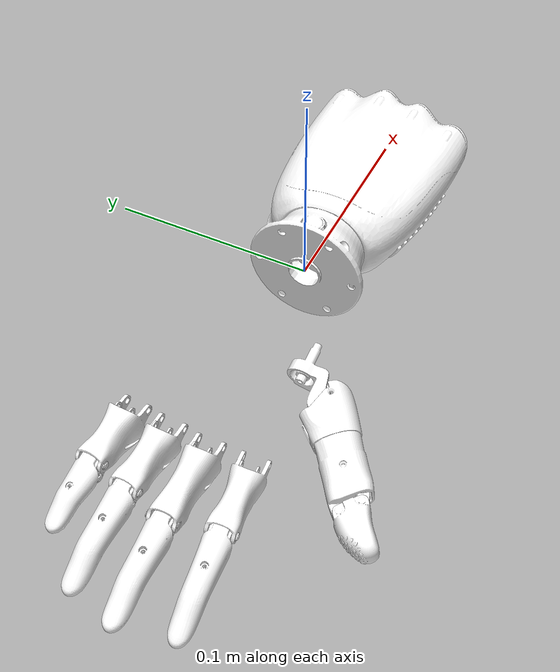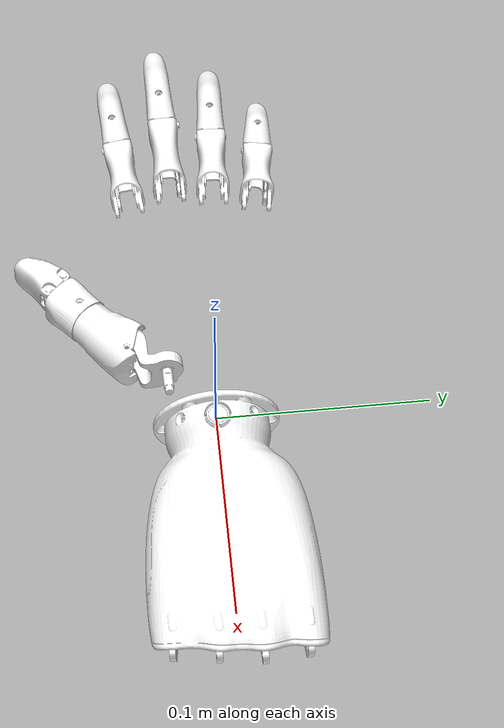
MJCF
<mujoco model="rohand_right">
  <compiler angle="radian"/>

  <asset>
    <mesh name="base_link" content_type="model/stl" file="../assets/meshes_r/base_link.STL"/>
    <mesh name="if_proximal_link" content_type="model/stl" file="../assets/meshes_r/if_proximal_link.STL"/>
    <mesh name="if_distal_link" content_type="model/stl" file="../assets/meshes_r/if_distal_link.STL"/>
    <mesh name="if_connecting_link" content_type="model/stl" file="../assets/meshes_r/if_connecting_link.STL"/>
    <mesh name="mf_proximal_link" content_type="model/stl" file="../assets/meshes_r/mf_proximal_link.STL"/>
    <mesh name="mf_distal_link" content_type="model/stl" file="../assets/meshes_r/mf_distal_link.STL"/>
    <mesh name="mf_connecting_link" content_type="model/stl" file="../assets/meshes_r/mf_connecting_link.STL"/>
    <mesh name="rf_proximal_link" content_type="model/stl" file="../assets/meshes_r/rf_proximal_link.STL"/>
    <mesh name="rf_distal_link" content_type="model/stl" file="../assets/meshes_r/rf_distal_link.STL"/>
    <mesh name="rf_connecting_link" content_type="model/stl" file="../assets/meshes_r/rf_connecting_link.STL"/>
    <mesh name="lf_proximal_link" content_type="model/stl" file="../assets/meshes_r/lf_proximal_link.STL"/>
    <mesh name="lf_distal_link" content_type="model/stl" file="../assets/meshes_r/lf_distal_link.STL"/>
    <mesh name="lf_connecting_link" content_type="model/stl" file="../assets/meshes_r/lf_connecting_link.STL"/>
    <mesh name="th_root_link" content_type="model/stl" file="../assets/meshes_r/th_root_link.STL"/>
    <mesh name="th_slider_connecting_link" content_type="model/stl" file="../assets/meshes_r/th_slider_connecting_link.STL"/>
    <mesh name="th_slider_link" content_type="model/stl" file="../assets/meshes_r/th_slider_link.STL"/>
    <mesh name="th_connecting_link" content_type="model/stl" file="../assets/meshes_r/th_connecting_link.STL"/>
    <mesh name="th_distal_link" content_type="model/stl" file="../assets/meshes_r/th_distal_link.STL"/>
    <mesh name="th_proximal_link" content_type="model/stl" file="../assets/meshes_r/th_proximal_link.STL"/>
  </asset>

  <worldbody>
    <body name="base_link" gravcomp="1">
      <geom type="mesh" rgba="1 1 1 1" mesh="base_link"/>
    </body>
    <body name="if_proximal_link" pos="-0.112403 -0.0377703 0.001883">
      <inertial pos="-0.0180497 0.0058905 -0.00162526" quat="-0.060392 0.737362 0.001023 0.672792" mass="0.0193521" diaginertia="2.3749e-07 2.32564e-07 1.02725e-07"/>
      <joint name="if_proximal_link" pos="0 0 0" axis="0.0827338 -0.992755 -0.0871348" damping="0.01"/>
      <geom type="mesh" rgba="1 1 1 1" mesh="if_proximal_link"/>
      <body name="if_distal_link" pos="-0.0356862 -0.00314452 -0.00264728">
        <inertial pos="-0.0186867 0.00656469 -0.00500004" quat="-0.0546812 0.586102 -0.00826521 0.808348" mass="0.0368602" diaginertia="5.91219e-07 5.711e-07 6.25982e-08"/>
        <joint name="if_distal_link" pos="0 0 0" axis="0.0827338 -0.992755 -0.0871348" damping="0.01"/>
        <geom type="mesh" rgba="1 1 1 1" mesh="if_distal_link"/>
      </body>
    </body>
    <body name="if_connecting_link" pos="-0.119956 -0.0364852 0.00646672">
      <inertial pos="-0.0154547 0.00429075 -0.00732543" quat="0.55408 0.389391 0.368807 0.636672" mass="0.00200341" diaginertia="2.67058e-08 2.63769e-08 3.50323e-10"/>
      <joint name="if_connecting_link" pos="0 0 0" axis="0.0827338 -0.992755 -0.0871348"/>
      <geom type="mesh" rgba="1 1 1 1" mesh="if_connecting_link"/>
    </body>
    <body name="mf_proximal_link" pos="-0.115671 -0.018188 0.00680697">
      <inertial pos="-0.0196712 0.00734063 -0.00259303" quat="0.477637 0.51503 0.521858 0.484015" mass="0.0237725" diaginertia="3.62216e-07 3.54295e-07 1.37122e-07"/>
      <joint name="mf_proximal_link" pos="0 0 0" axis="0.0132276 -0.999913 -7.25942e-05" damping="0.01"/>
      <geom type="mesh" rgba="1 1 1 1" mesh="mf_proximal_link"/>
      <body name="mf_distal_link" pos="-0.0409262 0.000353475 -0.00270789">
        <inertial pos="-0.0187159 0.00651053 -0.00360334" quat="-0.000819053 0.630684 0.00712497 0.776007" mass="0.0368155" diaginertia="5.91214e-07 5.7109e-07 6.25921e-08"/>
        <joint name="mf_distal_link" pos="0 0 0" axis="0.0132276 -0.999913 -7.25942e-05" damping="0.01"/>
        <geom type="mesh" rgba="1 1 1 1" mesh="mf_distal_link"/>
      </body>
    </body>
    <body name="mf_connecting_link" pos="-0.123126 -0.0155867 0.0112065">
      <inertial pos="-0.0178848 0.0046644 -0.00781703" quat="0.579347 0.397169 0.402415 0.587091" mass="0.00215109" diaginertia="3.73207e-08 3.69827e-08 3.61011e-10"/>
      <joint name="mf_connecting_link" pos="0 0 0" axis="0.0132276 -0.999913 -7.25942e-05"/>
      <geom type="mesh" rgba="1 1 1 1" mesh="mf_connecting_link"/>
    </body>
    <body name="rf_proximal_link" pos="-0.113666 0.00185704 0.00606228">
      <inertial pos="-0.01704 0.00857722 -0.00226208" quat="0.0188617 0.737149 -0.0210658 0.675139" mass="0.0193519" diaginertia="2.37487e-07 2.32561e-07 1.02725e-07"/>
      <joint name="rf_proximal_link" pos="0 0 0" axis="-0.056557 -0.998399 -7.94204e-05" damping="0.01"/>
      <geom type="mesh" rgba="1 1 1 1" mesh="rf_proximal_link"/>
      <body name="rf_distal_link" pos="-0.0357665 0.00202635 -0.00262545">
        <inertial pos="-0.0176162 0.00863806 -0.00568724" quat="0.0274008 0.585421 -0.013871 0.810148" mass="0.0368603" diaginertia="5.91222e-07 5.71102e-07 6.25981e-08"/>
        <joint name="rf_distal_link" pos="0 0 0" axis="-0.056557 -0.998399 -7.94204e-05" damping="0.01"/>
        <geom type="mesh" rgba="1 1 1 1" mesh="rf_distal_link"/>
      </body>
    </body>
    <body name="rf_connecting_link" pos="-0.120922 0.0049721 0.0104619">
      <inertial pos="-0.0147431 0.00574363 -0.00778288" quat="0.613805 0.389258 0.367785 0.580048" mass="0.00200341" diaginertia="2.67058e-08 2.63769e-08 3.50323e-10"/>
      <joint name="rf_connecting_link" pos="0 0 0" axis="-0.056557 -0.998399 -7.94204e-05"/>
      <geom type="mesh" rgba="1 1 1 1" mesh="rf_connecting_link"/>
    </body>
    <body name="lf_proximal_link" pos="-0.110379 0.0220139 0.00417345">
      <inertial pos="-0.0147962 0.00917744 -0.00300241" quat="0.0722389 0.719192 -0.0123676 0.690935" mass="0.0177933" diaginertia="1.82328e-07 1.76562e-07 9.42101e-08"/>
      <joint name="lf_proximal_link" pos="0 0 0" axis="-0.117591 -0.989231 0.08715" damping="0.01"/>
      <geom type="mesh" rgba="1 1 1 1" mesh="lf_proximal_link"/>
      <body name="lf_distal_link" pos="-0.0315591 0.00344977 -0.00342448">
        <inertial pos="-0.0100218 0.00833351 -0.00553301" quat="0.0720798 0.618733 0.00177529 0.782286" mass="0.016907" diaginertia="7.45368e-08 6.64031e-08 2.22594e-08"/>
        <joint name="lf_distal_link" pos="0 0 0" axis="-0.117591 -0.989231 0.08715" damping="0.01"/>
        <geom type="mesh" rgba="1 1 1 1" mesh="lf_distal_link"/>
      </body>
    </body>
    <body name="lf_connecting_link" pos="-0.117384 0.0259413 0.00832091">
      <inertial pos="-0.0127597 0.0057868 -0.00775507" quat="0.658345 0.354095 0.364756 0.555114" mass="0.00176993" diaginertia="1.94958e-08 1.92587e-08 2.55967e-10"/>
      <joint name="lf_connecting_link" pos="0 0 0" axis="-0.117591 -0.989231 0.08715"/>
      <geom type="mesh" rgba="1 1 1 1" mesh="lf_connecting_link"/>
    </body>
    <body name="th_root_link" pos="-0.025193 -0.019558 -0.018539">
      <inertial pos="-0.0181653 -0.00613769 -0.00621049" quat="0.373764 0.177573 0.575256 0.705584" mass="0.0734873" diaginertia="0.000154618 0.000128515 6.37189e-05"/>
      <joint name="th_root_link" pos="0 0 0" axis="0.976159 0.01293 0.21667" range="0 1.57" damping="0.05"/>
      <geom type="mesh" rgba="1 1 1 1" mesh="th_root_link"/>
      <body name="th_slider_connecting_link" pos="-0.03309 -0.015816 -0.018049">
        <joint name="th_slider_connecting_link" pos="0 0 0" axis="0.21669 0 -0.97624" damping="0.05"/>
        <inertial pos="-0.000300374 -0.00530811 0.00782073" quat="0.381951 0.495717 -0.475895 0.617982" mass="0.886531" diaginertia="1.54015e-09 1.3854e-09 1.64213e-10"/>
        <geom type="mesh" rgba="1 1 1 1" mesh="th_slider_connecting_link"/>
        <body name="th_slider_link" pos="0.0027796 -0.010616 0.00041217">
          <inertial pos="-0.00853923 -0.00592343 0.00619651" quat="0.365019 0.225086 0.605626 0.670309" mass="0.03164989" diaginertia="1.74468e-07 1.47922e-07 3.02562e-08"/>
          <joint name="th_slider_link" pos="0 0 0" axis="-0.21669 0 0.97624" damping="0.05"/>
          <geom type="mesh" rgba="1 1 1 1" mesh="th_slider_link"/>
          <body name="th_connecting_link" pos="-0.024272 -0.021535 -0.0020074">
            <inertial pos="-0.00506313 -0.00240239 0.00350321" quat="0.437927 0.307219 0.555177 0.636879" mass="0.0210992" diaginertia="6.94037e-09 5.14342e-09 3.44915e-09"/>
            <joint name="th_connecting_link" pos="0 0 0" axis="0.21669 0 -0.97624" damping="0.05"/>
            <geom type="mesh" rgba="1 1 1 1" mesh="th_connecting_link"/>
            <body name="th_distal_link" pos="-0.0080286 -0.0043927 -0.0047731">
              <inertial pos="-0.0108621 -0.00227229 0.00524354" quat="0.953171 0.0228101 -0.101702 -0.283902" mass="0.182377" diaginertia="1.23939e-05 1.23782e-05 6.36213e-6"/>
              <joint name="th_distal_link" pos="0 0 0" axis="0.21669 0 -0.97624"/>
              <geom type="mesh" rgba="1 1 1 1" mesh="th_distal_link"/>
            </body>
          </body>
          <body name="th_proximal_link" pos="0.00072735 8.441e-05 0.0082537">
            <inertial pos="-0.0158101 -0.00708217 -0.00350579" quat="-0.15032 0.607435 0.186984 0.757274" mass="0.0544409" diaginertia="2.19956e-04 1.9818e-04 3.24991e-05"/>
            <joint name="th_proximal_link" pos="0 0 0" axis="0.760769 0.626669 0.16887" type="slide" damping="0.05"/>
            <geom type="mesh" rgba="1 1 1 1" mesh="th_proximal_link"/>
          </body>
        </body>
      </body>
    </body>
  </worldbody>
  <contact>
    <exclude body1="base_link" body2="if_proximal_link"/>
    <exclude body1="base_link" body2="if_distal_link"/>
    <exclude body1="base_link" body2="if_connecting_link"/>
    <exclude body1="if_connecting_link" body2="if_proximal_link"/>
    <exclude body1="if_connecting_link" body2="if_distal_link"/>
    <exclude body1="if_proximal_link" body2="if_distal_link"/>
    <exclude body1="base_link" body2="mf_proximal_link"/>
    <exclude body1="base_link" body2="mf_distal_link"/>
    <exclude body1="base_link" body2="mf_connecting_link"/>
    <exclude body1="mf_connecting_link" body2="mf_proximal_link"/>
    <exclude body1="mf_connecting_link" body2="mf_distal_link"/>
    <exclude body1="mf_proximal_link" body2="mf_distal_link"/>
    <exclude body1="base_link" body2="rf_proximal_link"/>
    <exclude body1="base_link" body2="rf_distal_link"/>
    <exclude body1="base_link" body2="rf_connecting_link"/>
    <exclude body1="rf_connecting_link" body2="rf_proximal_link"/>
    <exclude body1="rf_connecting_link" body2="rf_distal_link"/>
    <exclude body1="rf_proximal_link" body2="rf_distal_link"/>
    <exclude body1="base_link" body2="lf_proximal_link"/>
    <exclude body1="base_link" body2="lf_distal_link"/>
    <exclude body1="base_link" body2="lf_connecting_link"/>
    <exclude body1="lf_connecting_link" body2="lf_proximal_link"/>
    <exclude body1="lf_connecting_link" body2="lf_distal_link"/>
    <exclude body1="lf_proximal_link" body2="lf_distal_link"/>
    <exclude body1="th_root_link" body2="base_link"/>
    <exclude body1="th_root_link" body2="th_slider_link"/>
    <exclude body1="th_root_link" body2="th_connecting_link"/>
    <exclude body1="th_root_link" body2="th_distal_link"/>
    <exclude body1="th_root_link" body2="th_slider_link"/>
    <exclude body1="th_root_link" body2="th_proximal_link"/>
    <exclude body1="th_root_link" body2="th_slider_connecting_link"/>
    <exclude body1="th_slider_connecting_link" body2="base_link"/>
    <exclude body1="th_slider_connecting_link" body2="th_slider_link"/>
    <exclude body1="th_slider_connecting_link" body2="th_connecting_link"/>
    <exclude body1="th_slider_connecting_link" body2="th_distal_link"/>
    <exclude body1="th_slider_connecting_link" body2="th_proximal_link"/>
    <exclude body1="th_slider_link" body2="base_link"/>
    <exclude body1="th_slider_link" body2="th_connecting_link"/>
    <exclude body1="th_slider_link" body2="th_distal_link"/>
    <exclude body1="th_slider_link" body2="th_proximal_link"/>
    <exclude body1="th_connecting_link" body2="base_link"/>
    <exclude body1="th_connecting_link" body2="th_distal_link"/>
    <exclude body1="th_connecting_link" body2="th_proximal_link"/>
    <exclude body1="th_distal_link" body2="base_link"/>
    <exclude body1="th_distal_link" body2="th_proximal_link"/>
    <exclude body1="th_proximal_link" body2="base_link"/>
  </contact>
  <equality>
    <connect body1="if_distal_link" body2="if_connecting_link" anchor="-0.0020 0.005 -0.007" solimp="0.95 0.99 0.001" solref="0.005 1"/>
    <connect body1="mf_distal_link" body2="mf_connecting_link" anchor="-0.0025 0.005 -0.00734" solimp="0.95 0.99 0.001" solref="0.005 1"/>
    <connect body1="rf_distal_link" body2="rf_connecting_link" anchor="-0.0020 0.005 -0.00734" solimp="0.95 0.99 0.001" solref="0.005 1"/>
    <connect body1="lf_distal_link" body2="lf_connecting_link" anchor="-0.0020 0.005 -0.00734" solimp="0.99 0.99 0.001" solref="0.001 1"/>
    <connect body1="th_proximal_link" body2="th_root_link" anchor="0.009 0.008 -0.007" solimp="0.95 0.99 0.001" solref="0.005 1"/>
    <connect body1="th_distal_link" body2="th_proximal_link" anchor="-0.009 0.0075 -0.001" solimp="0.8 0.95 0.001" solref="0.005 1"/>
  </equality>
  <actuator>
    <position name="index_finger" joint="if_proximal_link" kp="1" ctrlrange="0 1.45"/>
    <position name="middle_finger" joint="mf_proximal_link" kp="1" ctrlrange="0 1.50"/>
    <position name="ring_finger" joint="rf_proximal_link" kp="1" ctrlrange="0 1.44"/>
    <position name="little_finger" joint="lf_proximal_link" kp="1" ctrlrange="0 1.44"/>
    <position name="thumb_root" joint="th_root_link" kp="1" ctrlrange="0 1.57"/>
    <position name="thumb" joint="th_slider_connecting_link" kp="1" ctrlrange="0 1.327"/>
  </actuator>
</mujoco>
